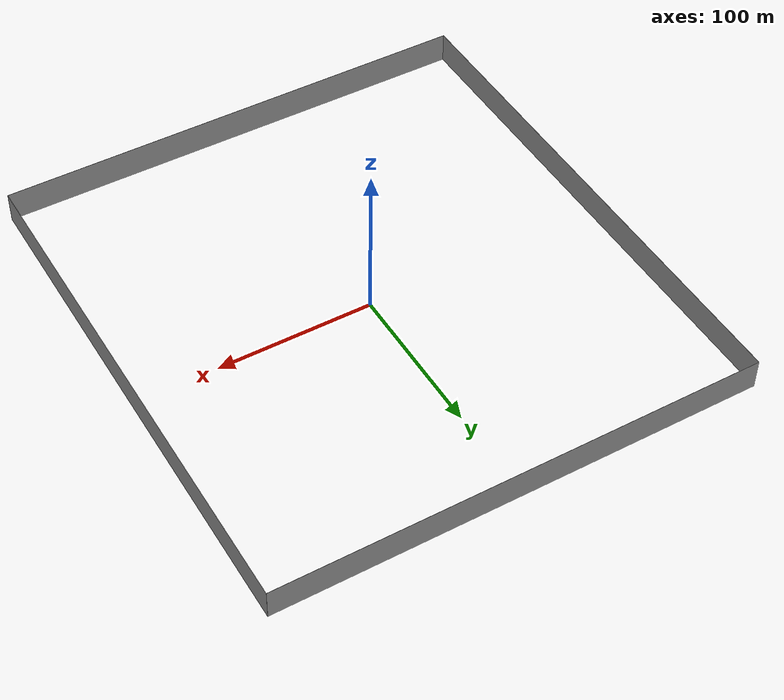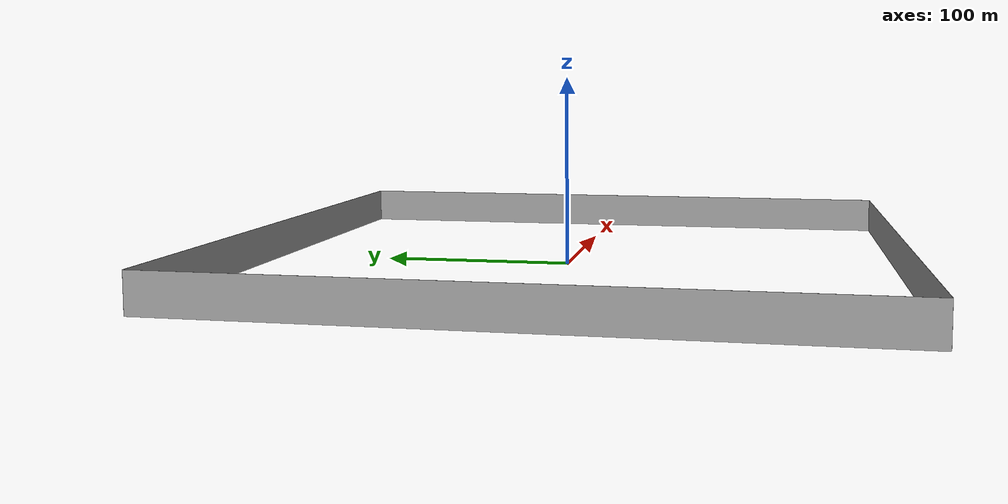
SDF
<?xml version='1.0'?>
<sdf version='1.6'>
  <model name='bounding_walls'>
    <static>1</static>

    <link name='Wall_1'>
      <collision name='Wall_1_Collision'>
        <geometry>
          <box>
            <size>309 0.1 20</size>
          </box>
        </geometry>
        <pose frame=''>0 0 0 0 0 0</pose>
      </collision>
      <visual name='Wall_1_Visual'>
        <pose frame=''>0 0 0 0 0 0</pose>
        <geometry>
          <box>
            <size>309 0.1 20</size>
          </box>
        </geometry>
        <material>
          <script>
            <uri>model://corridor/materials/scripts</uri>
            <uri>model://corridor/materials/textures</uri>
            <name>Gazebo/Grey</name>
          </script>
          <ambient>1 1 1 1</ambient>
        </material>
        <meta>
          <layer>0</layer>
        </meta>
      </visual>
      <pose frame=''>-0.5 -172 10 0 0 0</pose>
    </link>

    <link name='Wall_2'>
      <collision name='Wall_2_Collision'>
        <geometry>
          <box>
            <size>0.1 334 20</size>
          </box>
        </geometry>
        <pose frame=''>0 0 0 0 0 0</pose>
      </collision>
      <visual name='Wall_2_Visual'>
        <pose frame=''>0 0 0 0 0 0</pose>
        <geometry>
          <box>
            <size>0.1 334 20</size>
          </box>
        </geometry>
        <material>
          <script>
            <name>Gazebo/Grey</name>
          </script>
          <ambient>1 1 1 1</ambient>
        </material>
        <meta>
          <layer>0</layer>
        </meta>
      </visual>
      <pose frame=''>154 -5 10 0 0 0</pose>
    </link>

    <link name='Wall_3'>
      <collision name='Wall_3_Collision'>
        <geometry>
          <box>
            <size>309 0.1 20</size>
          </box>
        </geometry>
        <pose frame=''>0 0 0 0 0 0</pose>
      </collision>
      <visual name='Wall_3_Visual'>
        <pose frame=''>0 0 0 0 0 0</pose>
        <geometry>
          <box>
            <size>309 0.1 20</size>
          </box>
        </geometry>
        <material>
          <script>
            <name>Gazebo/Grey</name>
          </script>
          <ambient>1 1 1 1</ambient>
        </material>
        <meta>
          <layer>0</layer>
        </meta>
      </visual>
      <pose frame=''>-0.5 162 10 0 0 0 0</pose>
    </link>

    <link name='Wall_4'>
      <collision name='Wall_4_Collision'>
        <geometry>
          <box>
            <size>0.1 334 20</size>
          </box>
        </geometry>
        <pose frame=''>0 0 0 0 0 0</pose>
      </collision>
      <visual name='Wall_4_Visual'>
        <pose frame=''>0 0 0 0 0 0</pose>
        <geometry>
          <box>
            <size>0.1 334 20</size>
          </box>
        </geometry>
        <material>
          <script>
            <name>Gazebo/Grey</name>
          </script>
          <ambient>1 1 1 1</ambient>
        </material>
        <meta>
          <layer>0</layer>
        </meta>
      </visual>
      <pose frame=''>-155 -5 10 0 0 0</pose>
    </link>

  </model>
</sdf>
